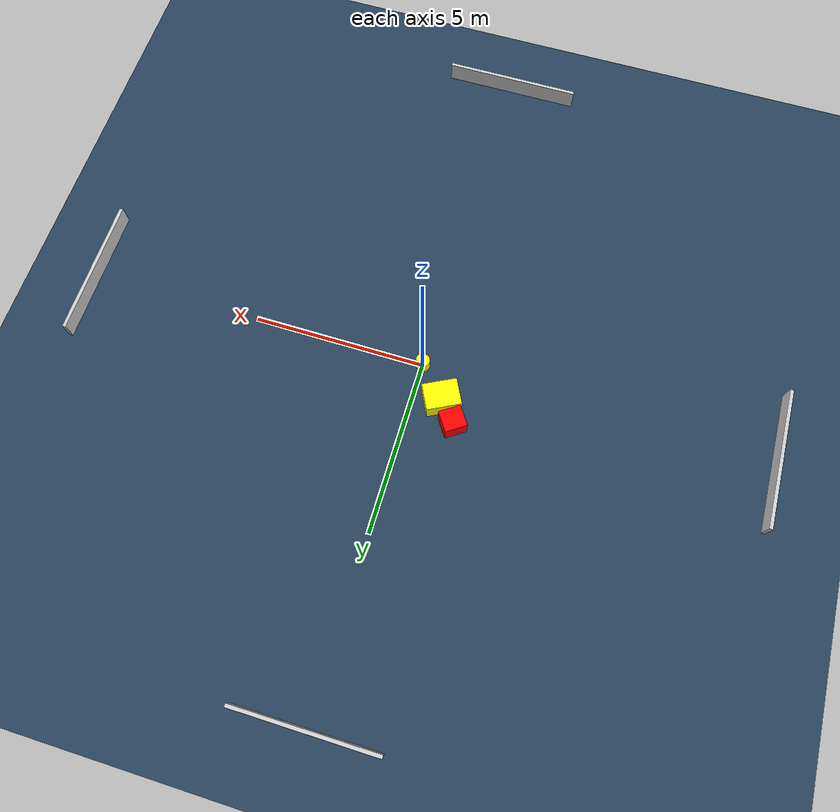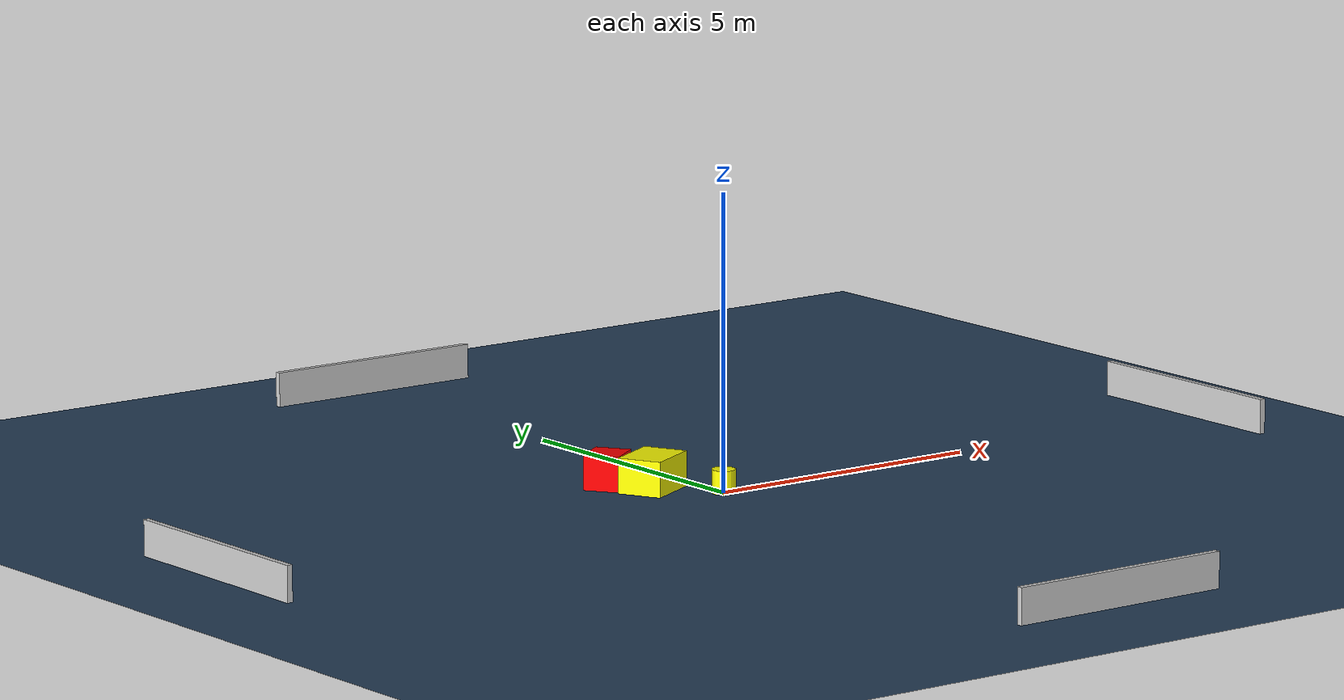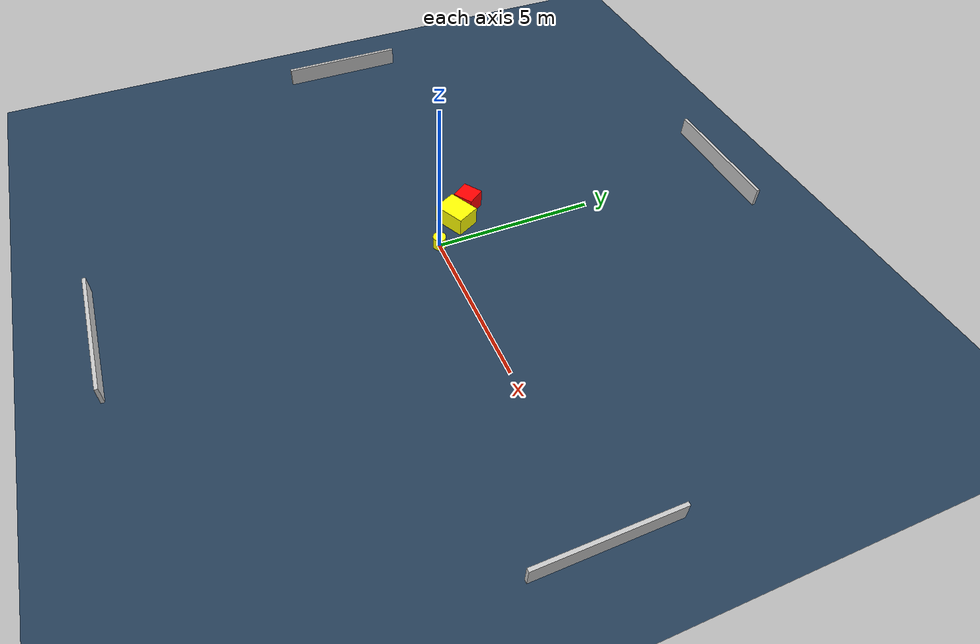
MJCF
<?xml version="1.0" ?>
<mujoco model="generated_environment">
  <option timestep="0.01" integrator="RK4" cone="elliptic"/>
  <default>
    <geom density="1"/>
  </default>
  <asset>
    <texture builtin="gradient" height="3072" name="skybox" rgb1="0.3 0.5 0.7" rgb2="0 0 0" type="skybox" width="512"/>
    <texture builtin="checker" height="300" name="groundplane" rgb1="0.2 0.3 0.4" rgb2="0.1 0.2 0.3" type="2d" width="300"/>
    <material name="groundplane" reflectance="0.2" texrepeat="5 5" texture="groundplane"/>
  </asset>
  <worldbody>
    <light dir="0 0 -1" directional="true" pos="0 0 1.5"/>
    <geom condim="3" friction="0.5 0.005 0.001" material="groundplane" name="floor" pos="0 0 0" size="0 0 0.05" type="plane"/>
    <body name="walls">
      <geom name="wall_1" condim="4" pos="-10.0 0.0 0.3" rgba="0.800000011920929 0.800000011920929 0.800000011920929 1.0" size="0.05 2.0 0.3" type="box"/>
      <geom name="wall_2" condim="4" pos="10.0 0.0 0.3" rgba="0.800000011920929 0.800000011920929 0.800000011920929 1.0" size="0.05 2.0 0.3" type="box"/>
      <geom name="wall_3" condim="4" pos="0.0 -10.0 0.3" rgba="0.800000011920929 0.800000011920929 0.800000011920929 1.0" size="2.0 0.05 0.3" type="box"/>
      <geom name="wall_4" condim="4" pos="0.0 10.0 0.3" rgba="0.800000011920929 0.800000011920929 0.800000011920929 1.0" size="2.0 0.05 0.3" type="box"/>
    </body>
    <body name="robot">
      <joint name="joint_x" type="slide" pos="0 0 0" axis="1 0 0"/>
      <joint name="joint_y" type="slide" pos="0 0 0" axis="0 1 0"/>
      <geom name="robot" type="cylinder" pos="0.0 0.0 0.2" size="0.2 0.2 0.0" mass="5.0" friction="1.0 0.005 0.0001" condim="4" rgba="1.0 1.0 0.0 1.0"/>
    </body>
    <body name="obstacle_1_movable">
      <geom name="obstacle_1_movable" condim="4" pos="-0.7997264757565461 0.8782480391702251 0.3" euler="0 0 206.9195946929901" friction="0.0 0.005 0.001" rgba="1.0 1.0 0.0 1.0" size="0.49613953588928783 0.38036125924737246 0.3" type="box" mass="0.1"/>
      <joint type="free"/>
    </body>
    <body name="obstacle_2_static">
      <geom name="obstacle_2_static" condim="4" pos="-1.2856403448560958 1.468127649997472 0.3" euler="0 0 124.30220335505766" friction="0.0 0.005 0.001" rgba="1.0 0.0 0.0 1.0" size="0.30590071020195286 0.3200514048317146 0.3" type="box"/>
    </body>
  </worldbody>
  <actuator>
    <motor name="actuator_x" joint="joint_x" gear="1" ctrlrange="-1 1"/>
    <motor name="actuator_y" joint="joint_y" gear="1" ctrlrange="-1 1"/>
  </actuator>
</mujoco>
